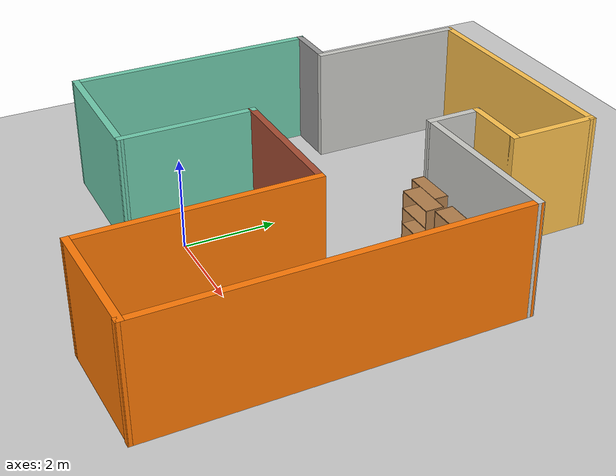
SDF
<sdf version="1.6">
 <world name="default">
  <light name="sun" type="directional">
   <pose>0 0 10 0 -0 0</pose>
   <diffuse>0.8 0.8 0.8 1</diffuse>
   <specular>0.2 0.2 0.2 1</specular>
   <attenuation>
    <range>1000</range>
    <constant>0.9</constant>
    <linear>0.01</linear>
    <quadratic>0.001</quadratic>
   </attenuation>
   <direction>-0.5 0.1 -0.9</direction>
  </light>
  <model name="ground_plane">
   <static>1</static>
   <link name="link">
    <collision name="collision">
     <geometry><plane><normal>0 0 1</normal><size>100 100</size></plane></geometry>
     <surface>
      <contact><collide_bitmask>65535</collide_bitmask></contact>
      <friction><ode><mu>100</mu><mu2>50</mu2></ode></friction>
     </surface>
    </collision>
    <visual name="visual">
     <cast_shadows>0</cast_shadows>
     <geometry><plane><normal>0 0 1</normal><size>100 100</size></plane></geometry>
     <material>
      <script><uri>file://media/materials/scripts/gazebo.material</uri><name>Gazebo/Grey</name></script>
     </material>
    </visual>
   </link>
  </model>
  <gravity>0 0 -9.8</gravity>
  <magnetic_field>6e-06 2.3e-05 -4.2e-05</magnetic_field>
  <atmosphere type="adiabatic"/>
  <physics name="default_physics" default="0" type="ode">
   <max_step_size>0.001</max_step_size>
   <real_time_factor>1</real_time_factor>
   <real_time_update_rate>1000</real_time_update_rate>
  </physics>
  <scene><ambient>0.4 0.4 0.4 1</ambient><background>0.7 0.7 0.7 1</background><shadows>1</shadows></scene>
  <spherical_coordinates>
   <surface_model>EARTH_WGS84</surface_model>
   <latitude_deg>0</latitude_deg>
   <longitude_deg>0</longitude_deg>
   <elevation>0</elevation>
   <heading_deg>0</heading_deg>
  </spherical_coordinates>
  <model name="easy">
   <pose>0.861551 2.3939 0 0 -0 0</pose>
   <link name="Wall_1">
    <collision name="Wall_1_Collision">
     <geometry><box><size>5.5 0.15 2.5</size></box></geometry>
     <pose>0 0 1.25 0 -0 0</pose>
    </collision>
    <visual name="Wall_1_Visual">
     <pose>0 0 1.25 0 -0 0</pose>
     <geometry><box><size>5.5 0.15 2.5</size></box></geometry>
     <material>
      <script><uri>file://media/materials/scripts/gazebo.material</uri><name>Gazebo/Grey</name></script>
      <ambient>0.435294 0.796078 0.67451 1</ambient>
     </material>
     <meta><layer>0</layer></meta>
    </visual>
    <pose>-4.31567 -0.707217 0 0 0 -1.5708</pose>
   </link>
   <link name="Wall_10">
    <collision name="Wall_10_Collision">
     <geometry><box><size>3.76202 0.15 2.5</size></box></geometry>
     <pose>0 0 1.25 0 -0 0</pose>
    </collision>
    <visual name="Wall_10_Visual">
     <pose>0 0 1.25 0 -0 0</pose>
     <geometry><box><size>3.76202 0.15 2.5</size></box></geometry>
     <material>
      <script><uri>file://media/materials/scripts/gazebo.material</uri><name>Gazebo/CeilingTiled</name></script>
      <ambient>1 1 1 1</ambient>
     </material>
     <meta><layer>0</layer></meta>
    </visual>
    <pose>2.50896 2.48114 0 0 0 -3.12451</pose>
   </link>
   <link name="Wall_11">
    <collision name="Wall_11_Collision">
     <geometry><box><size>1.25 0.15 2.5</size></box></geometry>
     <pose>0 0 1.25 0 -0 0</pose>
    </collision>
    <visual name="Wall_11_Visual">
     <pose>0 0 1.25 0 -0 0</pose>
     <geometry><box><size>1.25 0.15 2.5</size></box></geometry>
     <material>
      <script><uri>file://media/materials/scripts/gazebo.material</uri><name>Gazebo/CeilingTiled</name></script>
      <ambient>1 1 1 1</ambient>
     </material>
     <meta><layer>0</layer></meta>
    </visual>
    <pose>0.703214 3.00029 0 0 -0 1.5708</pose>
   </link>
   <link name="Wall_12">
    <collision name="Wall_12_Collision">
     <geometry><box><size>1.5 0.15 2.5</size></box></geometry>
     <pose>0 0 1.25 0 -0 0</pose>
    </collision>
    <visual name="Wall_12_Visual">
     <pose>0 0 1.25 0 -0 0</pose>
     <geometry><box><size>1.5 0.15 2.5</size></box></geometry>
     <material>
      <script><uri>file://media/materials/scripts/gazebo.material</uri><name>Gazebo/Grey</name></script>
      <ambient>1 0.764706 0.305882 1</ambient>
     </material>
     <meta><layer>0</layer></meta>
    </visual>
    <pose>1.37821 3.55029 0 0 -0 0</pose>
   </link>
   <link name="Wall_13">
    <collision name="Wall_13_Collision">
     <geometry><box><size>2 0.15 2.5</size></box></geometry>
     <pose>0 0 1.25 0 -0 0</pose>
    </collision>
    <visual name="Wall_13_Visual">
     <pose>0 0 1.25 0 -0 0</pose>
     <geometry><box><size>2 0.15 2.5</size></box></geometry>
     <material>
      <script><uri>file://media/materials/scripts/gazebo.material</uri><name>Gazebo/Grey</name></script>
      <ambient>1 0.764706 0.305882 1</ambient>
     </material>
     <meta><layer>0</layer></meta>
    </visual>
    <pose>2.05321 4.47529 0 0 -0 1.5708</pose>
   </link>
   <link name="Wall_19">
    <collision name="Wall_19_Collision">
     <geometry><box><size>1.25 0.15 2.5</size></box></geometry>
     <pose>0 0 1.25 0 -0 0</pose>
    </collision>
    <visual name="Wall_19_Visual">
     <pose>0 0 1.25 0 -0 0</pose>
     <geometry><box><size>1.25 0.15 2.5</size></box></geometry>
     <material>
      <script><uri>file://media/materials/scripts/gazebo.material</uri><name>Gazebo/Grey</name></script>
      <ambient>1 1 1 1</ambient>
     </material>
     <meta><layer>0</layer></meta>
    </visual>
    <pose>-3.76567 1.96778 0 0 -0 0</pose>
   </link>
   <link name="Wall_2">
    <collision name="Wall_2_Collision">
     <geometry><box><size>3.06888 0.15 2.5</size></box></geometry>
     <pose>0 0 1.25 0 -0 0</pose>
    </collision>
    <visual name="Wall_2_Visual">
     <pose>0 0 1.25 0 -0 0</pose>
     <geometry><box><size>3.06888 0.15 2.5</size></box></geometry>
     <material>
      <script><uri>file://media/materials/scripts/gazebo.material</uri><name>Gazebo/Grey</name></script>
      <ambient>0.435294 0.796078 0.67451 1</ambient>
     </material>
     <meta><layer>0</layer></meta>
    </visual>
    <pose>-2.85623 -3.39971 0 0 0 -0.011984</pose>
   </link>
   <link name="Wall_20">
    <collision name="Wall_20_Collision">
     <geometry><box><size>3.5 0.15 2.5</size></box></geometry>
     <pose>0 0 1.25 0 -0 0</pose>
    </collision>
    <visual name="Wall_20_Visual">
     <pose>0 0 1.25 0 -0 0</pose>
     <geometry><box><size>3.5 0.15 2.5</size></box></geometry>
     <material>
      <script><uri>file://media/materials/scripts/gazebo.material</uri><name>Gazebo/CeilingTiled</name></script>
      <ambient>1 1 1 1</ambient>
     </material>
     <meta><layer>0</layer></meta>
    </visual>
    <pose>-3.21567 3.64278 0 0 -0 1.5708</pose>
   </link>
   <link name="Wall_21">
    <collision name="Wall_21_Collision">
     <geometry><box><size>5.41953 0.15 2.5</size></box></geometry>
     <pose>0 0 1.25 0 -0 0</pose>
    </collision>
    <visual name="Wall_21_Visual">
     <pose>0 0 1.25 0 -0 0</pose>
     <geometry><box><size>5.41953 0.15 2.5</size></box></geometry>
     <material>
      <script><uri>file://media/materials/scripts/gazebo.material</uri><name>Gazebo/Grey</name></script>
      <ambient>1 0.764706 0.305882 1</ambient>
     </material>
     <meta><layer>0</layer></meta>
    </visual>
    <pose>-0.581227 5.35904 0 0 -0 0.015659</pose>
   </link>
   <link name="Wall_3">
    <collision name="Wall_3_Collision">
     <geometry><box><size>3 0.15 2.5</size></box></geometry>
     <pose>0 0 1.25 0 -0 0</pose>
    </collision>
    <visual name="Wall_3_Visual">
     <pose>0 0 1.25 0 -0 0</pose>
     <geometry><box><size>3 0.15 2.5</size></box></geometry>
     <material>
      <script><uri>file://media/materials/scripts/gazebo.material</uri><name>Gazebo/Grey</name></script>
      <ambient>0.435294 0.796078 0.67451 1</ambient>
     </material>
     <meta><layer>0</layer></meta>
    </visual>
    <pose>-1.39679 -1.97471 0 0 -0 1.5708</pose>
   </link>
   <link name="Wall_6">
    <collision name="Wall_6_Collision">
     <geometry><box><size>3.25 0.15 2.5</size></box></geometry>
     <pose>0 0 1.25 0 -0 0</pose>
    </collision>
    <visual name="Wall_6_Visual">
     <pose>0 0 1.25 0 -0 0</pose>
     <geometry><box><size>3.25 0.15 2.5</size></box></geometry>
     <material>
      <script><uri>file://media/materials/scripts/gazebo.material</uri><name>Gazebo/Bricks</name></script>
      <ambient>1 1 1 1</ambient>
     </material>
     <meta><layer>0</layer></meta>
    </visual>
    <pose>0.153214 -0.549707 0 0 -0 0</pose>
   </link>
   <link name="Wall_7">
    <collision name="Wall_7_Collision">
     <geometry><box><size>5 0.15 2.5</size></box></geometry>
     <pose>0 0 1.25 0 -0 0</pose>
    </collision>
    <visual name="Wall_7_Visual">
     <pose>0 0 1.25 0 -0 0</pose>
     <geometry><box><size>5 0.15 2.5</size></box></geometry>
     <material>
      <script><uri>file://media/materials/scripts/gazebo.material</uri><name>Gazebo/Grey</name></script>
      <ambient>0.996078 0.47451 0.0196078 1</ambient>
     </material>
     <meta><layer>0</layer></meta>
    </visual>
    <pose>1.70321 -2.97471 0 0 0 -1.5708</pose>
   </link>
   <link name="Wall_8">
    <collision name="Wall_8_Collision">
     <geometry><box><size>2.76222 0.15 2.5</size></box></geometry>
     <pose>0 0 1.25 0 -0 0</pose>
    </collision>
    <visual name="Wall_8_Visual">
     <pose>0 0 1.25 0 -0 0</pose>
     <geometry><box><size>2.76222 0.15 2.5</size></box></geometry>
     <material>
      <script><uri>file://media/materials/scripts/gazebo.material</uri><name>Gazebo/Grey</name></script>
      <ambient>0.996078 0.47451 0.0196078 1</ambient>
     </material>
     <meta><layer>0</layer></meta>
    </visual>
    <pose>3.00896 -5.36886 0 0 -0 0.023623</pose>
   </link>
   <link name="Wall_9">
    <collision name="Wall_9_Collision">
     <geometry><box><size>8 0.15 2.5</size></box></geometry>
     <pose>0 0 1.25 0 -0 0</pose>
    </collision>
    <visual name="Wall_9_Visual">
     <pose>0 0 1.25 0 -0 0</pose>
     <geometry><box><size>8 0.15 2.5</size></box></geometry>
     <material>
      <script><uri>file://media/materials/scripts/gazebo.material</uri><name>Gazebo/Grey</name></script>
      <ambient>0.996078 0.47451 0.0196078 1</ambient>
     </material>
     <meta><layer>0</layer></meta>
    </visual>
    <pose>4.31471 -1.4283 0 0 -0 1.5708</pose>
   </link>
   <static>1</static>
  </model>
  <model name="bookshelf">
   <static>1</static>
   <link name="link">
    <inertial><mass>1</mass></inertial>
    <collision name="back">
     <pose>0 0.005 0.6 0 -0 0</pose>
     <geometry><box><size>0.9 0.01 1.2</size></box></geometry>
    </collision>
    <visual name="visual1">
     <pose>0 0.005 0.6 0 -0 0</pose>
     <geometry><box><size>0.9 0.01 1.2</size></box></geometry>
     <material>
      <script><uri>file://media/materials/scripts/gazebo.material</uri><name>Gazebo/Wood</name></script>
     </material>
    </visual>
    <collision name="left_side">
     <pose>0.45 -0.195 0.6 0 -0 0</pose>
     <geometry><box><size>0.02 0.4 1.2</size></box></geometry>
    </collision>
    <visual name="visual2">
     <pose>0.45 -0.195 0.6 0 -0 0</pose>
     <geometry><box><size>0.02 0.4 1.2</size></box></geometry>
     <material>
      <script><uri>file://media/materials/scripts/gazebo.material</uri><name>Gazebo/Wood</name></script>
     </material>
    </visual>
    <collision name="right_side">
     <pose>-0.45 -0.195 0.6 0 -0 0</pose>
     <geometry><box><size>0.02 0.4 1.2</size></box></geometry>
    </collision>
    <visual name="visual3">
     <pose>-0.45 -0.195 0.6 0 -0 0</pose>
     <geometry><box><size>0.02 0.4 1.2</size></box></geometry>
     <material>
      <script><uri>file://media/materials/scripts/gazebo.material</uri><name>Gazebo/Wood</name></script>
     </material>
    </visual>
    <collision name="bottom">
     <pose>0 -0.195 0.03 0 -0 0</pose>
     <geometry><box><size>0.88 0.4 0.06</size></box></geometry>
    </collision>
    <visual name="visual4">
     <pose>0 -0.195 0.03 0 -0 0</pose>
     <geometry><box><size>0.88 0.4 0.06</size></box></geometry>
     <material>
      <script><uri>file://media/materials/scripts/gazebo.material</uri><name>Gazebo/Wood</name></script>
     </material>
    </visual>
    <collision name="top">
     <pose>0 -0.195 1.19 0 -0 0</pose>
     <geometry><box><size>0.88 0.4 0.02</size></box></geometry>
    </collision>
    <visual name="visual5">
     <pose>0 -0.195 1.19 0 -0 0</pose>
     <geometry><box><size>0.88 0.4 0.02</size></box></geometry>
     <material>
      <script><uri>file://media/materials/scripts/gazebo.material</uri><name>Gazebo/Wood</name></script>
     </material>
    </visual>
    <collision name="low_shelf">
     <pose>0 -0.195 0.43 0 -0 0</pose>
     <geometry><box><size>0.88 0.4 0.02</size></box></geometry>
    </collision>
    <visual name="visual6">
     <pose>0 -0.195 0.43 0 -0 0</pose>
     <geometry><box><size>0.88 0.4 0.02</size></box></geometry>
     <material>
      <script><uri>file://media/materials/scripts/gazebo.material</uri><name>Gazebo/Wood</name></script>
     </material>
    </visual>
    <collision name="high_shelf">
     <pose>0 -0.195 0.8 0 -0 0</pose>
     <geometry><box><size>0.88 0.4 0.02</size></box></geometry>
    </collision>
    <visual name="visual7">
     <pose>0 -0.195 0.8 0 -0 0</pose>
     <geometry><box><size>0.88 0.4 0.02</size></box></geometry>
     <material>
      <script><uri>file://media/materials/scripts/gazebo.material</uri><name>Gazebo/Wood</name></script>
     </material>
    </visual>
   </link>
   <pose>1.95525 4.87683 0 0 -0 0</pose>
  </model>
  <model name="bookshelf_0">
   <static>1</static>
   <link name="link">
    <inertial><mass>1</mass></inertial>
    <collision name="back">
     <pose>0 0.005 0.6 0 -0 0</pose>
     <geometry><box><size>0.9 0.01 1.2</size></box></geometry>
    </collision>
    <visual name="visual1">
     <pose>0 0.005 0.6 0 -0 0</pose>
     <geometry><box><size>0.9 0.01 1.2</size></box></geometry>
     <material>
      <script><uri>file://media/materials/scripts/gazebo.material</uri><name>Gazebo/Wood</name></script>
     </material>
    </visual>
    <collision name="left_side">
     <pose>0.45 -0.195 0.6 0 -0 0</pose>
     <geometry><box><size>0.02 0.4 1.2</size></box></geometry>
    </collision>
    <visual name="visual2">
     <pose>0.45 -0.195 0.6 0 -0 0</pose>
     <geometry><box><size>0.02 0.4 1.2</size></box></geometry>
     <material>
      <script><uri>file://media/materials/scripts/gazebo.material</uri><name>Gazebo/Wood</name></script>
     </material>
    </visual>
    <collision name="right_side">
     <pose>-0.45 -0.195 0.6 0 -0 0</pose>
     <geometry><box><size>0.02 0.4 1.2</size></box></geometry>
    </collision>
    <visual name="visual3">
     <pose>-0.45 -0.195 0.6 0 -0 0</pose>
     <geometry><box><size>0.02 0.4 1.2</size></box></geometry>
     <material>
      <script><uri>file://media/materials/scripts/gazebo.material</uri><name>Gazebo/Wood</name></script>
     </material>
    </visual>
    <collision name="bottom">
     <pose>0 -0.195 0.03 0 -0 0</pose>
     <geometry><box><size>0.88 0.4 0.06</size></box></geometry>
    </collision>
    <visual name="visual4">
     <pose>0 -0.195 0.03 0 -0 0</pose>
     <geometry><box><size>0.88 0.4 0.06</size></box></geometry>
     <material>
      <script><uri>file://media/materials/scripts/gazebo.material</uri><name>Gazebo/Wood</name></script>
     </material>
    </visual>
    <collision name="top">
     <pose>0 -0.195 1.19 0 -0 0</pose>
     <geometry><box><size>0.88 0.4 0.02</size></box></geometry>
    </collision>
    <visual name="visual5">
     <pose>0 -0.195 1.19 0 -0 0</pose>
     <geometry><box><size>0.88 0.4 0.02</size></box></geometry>
     <material>
      <script><uri>file://media/materials/scripts/gazebo.material</uri><name>Gazebo/Wood</name></script>
     </material>
    </visual>
    <collision name="low_shelf">
     <pose>0 -0.195 0.43 0 -0 0</pose>
     <geometry><box><size>0.88 0.4 0.02</size></box></geometry>
    </collision>
    <visual name="visual6">
     <pose>0 -0.195 0.43 0 -0 0</pose>
     <geometry><box><size>0.88 0.4 0.02</size></box></geometry>
     <material>
      <script><uri>file://media/materials/scripts/gazebo.material</uri><name>Gazebo/Wood</name></script>
     </material>
    </visual>
    <collision name="high_shelf">
     <pose>0 -0.195 0.8 0 -0 0</pose>
     <geometry><box><size>0.88 0.4 0.02</size></box></geometry>
    </collision>
    <visual name="visual7">
     <pose>0 -0.195 0.8 0 -0 0</pose>
     <geometry><box><size>0.88 0.4 0.02</size></box></geometry>
     <material>
      <script><uri>file://media/materials/scripts/gazebo.material</uri><name>Gazebo/Wood</name></script>
     </material>
    </visual>
   </link>
   <pose>-0.67022 2.53774 0 0 -0 0</pose>
  </model>
  <model name="bookshelf_1">
   <static>1</static>
   <link name="link">
    <inertial><mass>1</mass></inertial>
    <collision name="back">
     <pose>0 0.005 0.6 0 -0 0</pose>
     <geometry><box><size>0.9 0.01 1.2</size></box></geometry>
    </collision>
    <visual name="visual1">
     <pose>0 0.005 0.6 0 -0 0</pose>
     <geometry><box><size>0.9 0.01 1.2</size></box></geometry>
     <material>
      <script><uri>file://media/materials/scripts/gazebo.material</uri><name>Gazebo/Wood</name></script>
     </material>
    </visual>
    <collision name="left_side">
     <pose>0.45 -0.195 0.6 0 -0 0</pose>
     <geometry><box><size>0.02 0.4 1.2</size></box></geometry>
    </collision>
    <visual name="visual2">
     <pose>0.45 -0.195 0.6 0 -0 0</pose>
     <geometry><box><size>0.02 0.4 1.2</size></box></geometry>
     <material>
      <script><uri>file://media/materials/scripts/gazebo.material</uri><name>Gazebo/Wood</name></script>
     </material>
    </visual>
    <collision name="right_side">
     <pose>-0.45 -0.195 0.6 0 -0 0</pose>
     <geometry><box><size>0.02 0.4 1.2</size></box></geometry>
    </collision>
    <visual name="visual3">
     <pose>-0.45 -0.195 0.6 0 -0 0</pose>
     <geometry><box><size>0.02 0.4 1.2</size></box></geometry>
     <material>
      <script><uri>file://media/materials/scripts/gazebo.material</uri><name>Gazebo/Wood</name></script>
     </material>
    </visual>
    <collision name="bottom">
     <pose>0 -0.195 0.03 0 -0 0</pose>
     <geometry><box><size>0.88 0.4 0.06</size></box></geometry>
    </collision>
    <visual name="visual4">
     <pose>0 -0.195 0.03 0 -0 0</pose>
     <geometry><box><size>0.88 0.4 0.06</size></box></geometry>
     <material>
      <script><uri>file://media/materials/scripts/gazebo.material</uri><name>Gazebo/Wood</name></script>
     </material>
    </visual>
    <collision name="top">
     <pose>0 -0.195 1.19 0 -0 0</pose>
     <geometry><box><size>0.88 0.4 0.02</size></box></geometry>
    </collision>
    <visual name="visual5">
     <pose>0 -0.195 1.19 0 -0 0</pose>
     <geometry><box><size>0.88 0.4 0.02</size></box></geometry>
     <material>
      <script><uri>file://media/materials/scripts/gazebo.material</uri><name>Gazebo/Wood</name></script>
     </material>
    </visual>
    <collision name="low_shelf">
     <pose>0 -0.195 0.43 0 -0 0</pose>
     <geometry><box><size>0.88 0.4 0.02</size></box></geometry>
    </collision>
    <visual name="visual6">
     <pose>0 -0.195 0.43 0 -0 0</pose>
     <geometry><box><size>0.88 0.4 0.02</size></box></geometry>
     <material>
      <script><uri>file://media/materials/scripts/gazebo.material</uri><name>Gazebo/Wood</name></script>
     </material>
    </visual>
    <collision name="high_shelf">
     <pose>0 -0.195 0.8 0 -0 0</pose>
     <geometry><box><size>0.88 0.4 0.02</size></box></geometry>
    </collision>
    <visual name="visual7">
     <pose>0 -0.195 0.8 0 -0 0</pose>
     <geometry><box><size>0.88 0.4 0.02</size></box></geometry>
     <material>
      <script><uri>file://media/materials/scripts/gazebo.material</uri><name>Gazebo/Wood</name></script>
     </material>
    </visual>
   </link>
   <pose>2.28959 4.47434 0 0 -0 0</pose>
  </model>
  <model name="bookshelf_2">
   <static>1</static>
   <link name="link">
    <inertial><mass>1</mass></inertial>
    <collision name="back">
     <pose>0 0.005 0.6 0 -0 0</pose>
     <geometry><box><size>0.9 0.01 1.2</size></box></geometry>
    </collision>
    <visual name="visual1">
     <pose>0 0.005 0.6 0 -0 0</pose>
     <geometry><box><size>0.9 0.01 1.2</size></box></geometry>
     <material>
      <script><uri>file://media/materials/scripts/gazebo.material</uri><name>Gazebo/Wood</name></script>
     </material>
    </visual>
    <collision name="left_side">
     <pose>0.45 -0.195 0.6 0 -0 0</pose>
     <geometry><box><size>0.02 0.4 1.2</size></box></geometry>
    </collision>
    <visual name="visual2">
     <pose>0.45 -0.195 0.6 0 -0 0</pose>
     <geometry><box><size>0.02 0.4 1.2</size></box></geometry>
     <material>
      <script><uri>file://media/materials/scripts/gazebo.material</uri><name>Gazebo/Wood</name></script>
     </material>
    </visual>
    <collision name="right_side">
     <pose>-0.45 -0.195 0.6 0 -0 0</pose>
     <geometry><box><size>0.02 0.4 1.2</size></box></geometry>
    </collision>
    <visual name="visual3">
     <pose>-0.45 -0.195 0.6 0 -0 0</pose>
     <geometry><box><size>0.02 0.4 1.2</size></box></geometry>
     <material>
      <script><uri>file://media/materials/scripts/gazebo.material</uri><name>Gazebo/Wood</name></script>
     </material>
    </visual>
    <collision name="bottom">
     <pose>0 -0.195 0.03 0 -0 0</pose>
     <geometry><box><size>0.88 0.4 0.06</size></box></geometry>
    </collision>
    <visual name="visual4">
     <pose>0 -0.195 0.03 0 -0 0</pose>
     <geometry><box><size>0.88 0.4 0.06</size></box></geometry>
     <material>
      <script><uri>file://media/materials/scripts/gazebo.material</uri><name>Gazebo/Wood</name></script>
     </material>
    </visual>
    <collision name="top">
     <pose>0 -0.195 1.19 0 -0 0</pose>
     <geometry><box><size>0.88 0.4 0.02</size></box></geometry>
    </collision>
    <visual name="visual5">
     <pose>0 -0.195 1.19 0 -0 0</pose>
     <geometry><box><size>0.88 0.4 0.02</size></box></geometry>
     <material>
      <script><uri>file://media/materials/scripts/gazebo.material</uri><name>Gazebo/Wood</name></script>
     </material>
    </visual>
    <collision name="low_shelf">
     <pose>0 -0.195 0.43 0 -0 0</pose>
     <geometry><box><size>0.88 0.4 0.02</size></box></geometry>
    </collision>
    <visual name="visual6">
     <pose>0 -0.195 0.43 0 -0 0</pose>
     <geometry><box><size>0.88 0.4 0.02</size></box></geometry>
     <material>
      <script><uri>file://media/materials/scripts/gazebo.material</uri><name>Gazebo/Wood</name></script>
     </material>
    </visual>
    <collision name="high_shelf">
     <pose>0 -0.195 0.8 0 -0 0</pose>
     <geometry><box><size>0.88 0.4 0.02</size></box></geometry>
    </collision>
    <visual name="visual7">
     <pose>0 -0.195 0.8 0 -0 0</pose>
     <geometry><box><size>0.88 0.4 0.02</size></box></geometry>
     <material>
      <script><uri>file://media/materials/scripts/gazebo.material</uri><name>Gazebo/Wood</name></script>
     </material>
    </visual>
   </link>
   <pose>3.25183 4.6377 0 0 -0 0</pose>
  </model>
 </world>
</sdf>
